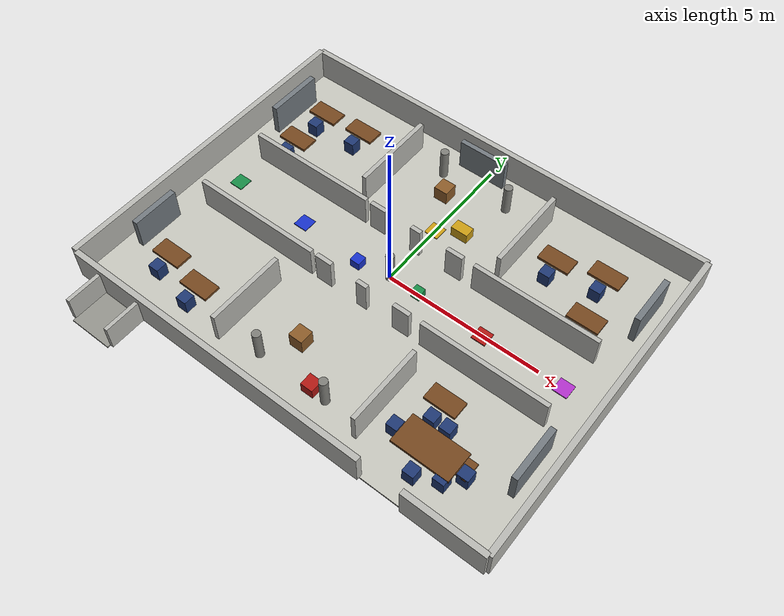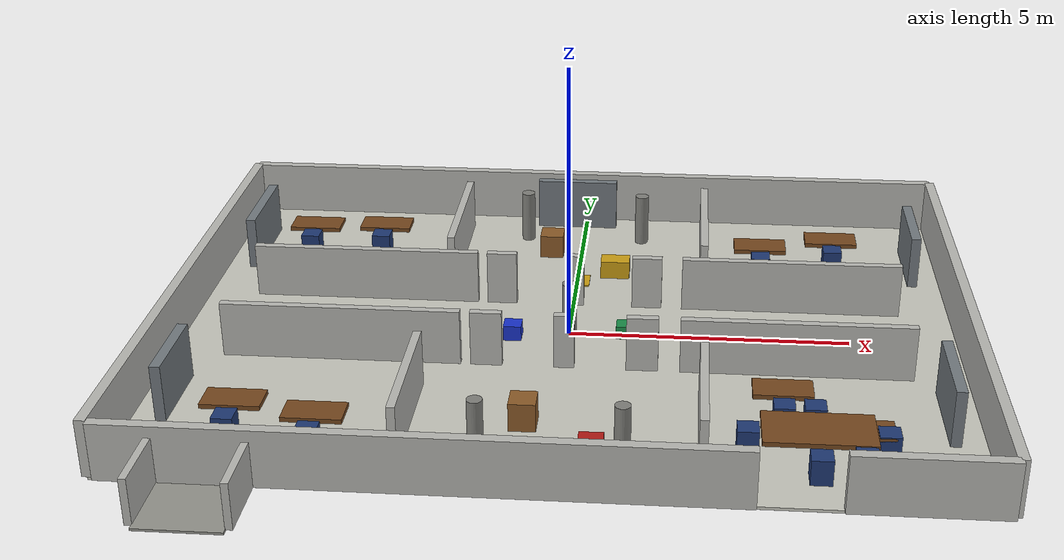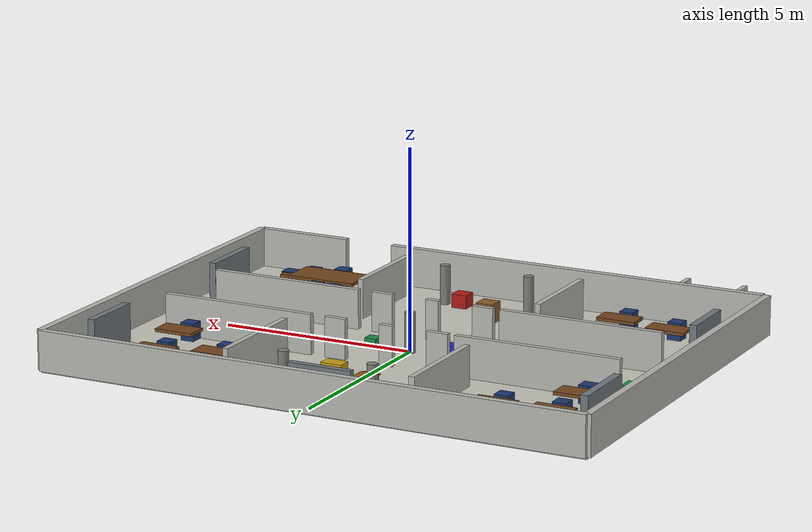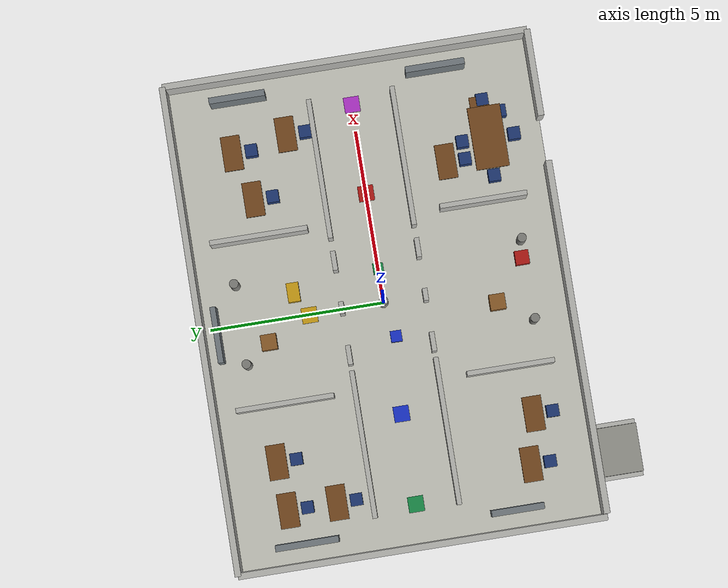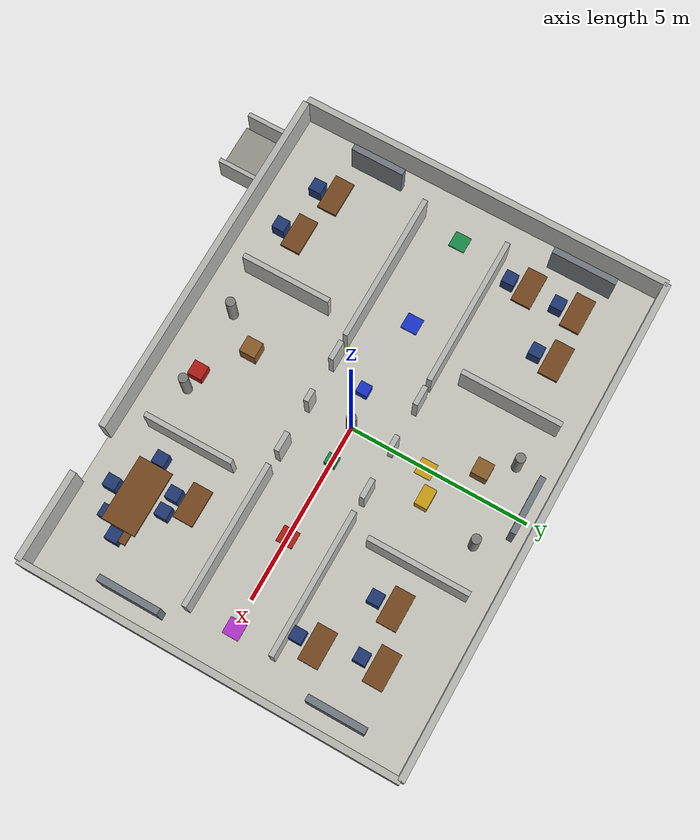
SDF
<?xml version="1.0"?>
<sdf version="1.6">
  <world name="emrmf_office_indoor">
    <plugin name="gazebo_ros_init" filename="libgazebo_ros_init.so"/>
    <plugin name="gazebo_ros_factory" filename="libgazebo_ros_factory.so"/>

    <scene>
      <ambient>0.55 0.55 0.55 1</ambient>
      <background>0.82 0.84 0.88 1</background>
      <shadows>false</shadows>
    </scene>
    <gravity>0 0 -9.8</gravity>

    <light name="sun" type="directional">
      <pose>0 0 8 0 0 0</pose>
      <diffuse>0.8 0.8 0.8 1</diffuse>
      <specular>0.1 0.1 0.1 1</specular>
      <direction>-0.4 0.2 -1</direction>
    </light>
    <light name="office_light_north" type="point"><pose>-3 3.2 3.0 0 0 0</pose><diffuse>0.9 0.9 0.82 1</diffuse><attenuation><range>10</range><constant>0.8</constant><linear>0.02</linear><quadratic>0.001</quadratic></attenuation></light>
    <light name="office_light_south" type="point"><pose>3 -3.2 3.0 0 0 0</pose><diffuse>0.9 0.9 0.82 1</diffuse><attenuation><range>10</range><constant>0.8</constant><linear>0.02</linear><quadratic>0.001</quadratic></attenuation></light>
    <light name="corridor_light" type="point"><pose>0 0 2.8 0 0 0</pose><diffuse>0.85 0.9 1.0 1</diffuse><attenuation><range>9</range><constant>0.8</constant><linear>0.02</linear><quadratic>0.001</quadratic></attenuation></light>

    <model name="ground_plane">
      <static>true</static>
      <pose>0 0 -0.025 0 0 0</pose>
      <link name="link">
        <collision name="collision"><geometry><box><size>14.0 10.5 0.05</size></box></geometry></collision>
        <visual name="visual"><geometry><box><size>14.0 10.5 0.05</size></box></geometry><material><ambient>0.78 0.78 0.74 1</ambient><diffuse>0.78 0.78 0.74 1</diffuse></material></visual>
      </link>
    </model>
    <model name="outer_wall_north">
      <static>true</static>
      <pose>0 5.25 0.5 0 0 0</pose>
      <link name="link">
        <collision name="collision"><geometry><box><size>14.0 0.18 1.0</size></box></geometry></collision>
        <visual name="visual"><geometry><box><size>14.0 0.18 1.0</size></box></geometry><material><ambient>0.72 0.72 0.70 1</ambient><diffuse>0.72 0.72 0.70 1</diffuse></material></visual>
      </link>
    </model>
    <model name="outer_wall_west">
      <static>true</static>
      <pose>-7.0 0 0.5 0 0 0</pose>
      <link name="link">
        <collision name="collision"><geometry><box><size>0.18 10.5 1.0</size></box></geometry></collision>
        <visual name="visual"><geometry><box><size>0.18 10.5 1.0</size></box></geometry><material><ambient>0.72 0.72 0.70 1</ambient><diffuse>0.72 0.72 0.70 1</diffuse></material></visual>
      </link>
    </model>
    <model name="outer_wall_east">
      <static>true</static>
      <pose>7.0 0 0.5 0 0 0</pose>
      <link name="link">
        <collision name="collision"><geometry><box><size>0.18 10.5 1.0</size></box></geometry></collision>
        <visual name="visual"><geometry><box><size>0.18 10.5 1.0</size></box></geometry><material><ambient>0.72 0.72 0.70 1</ambient><diffuse>0.72 0.72 0.70 1</diffuse></material></visual>
      </link>
    </model>
    <model name="outer_wall_south_left">
      <static>true</static>
      <pose>-1.85 -5.25 0.5 0 0 0</pose>
      <link name="link">
        <collision name="collision"><geometry><box><size>10.1 0.18 1.0</size></box></geometry></collision>
        <visual name="visual"><geometry><box><size>10.1 0.18 1.0</size></box></geometry><material><ambient>0.72 0.72 0.70 1</ambient><diffuse>0.72 0.72 0.70 1</diffuse></material></visual>
      </link>
    </model>
    <model name="outer_wall_south_right">
      <static>true</static>
      <pose>5.75 -5.25 0.5 0 0 0</pose>
      <link name="link">
        <collision name="collision"><geometry><box><size>2.5 0.18 1.0</size></box></geometry></collision>
        <visual name="visual"><geometry><box><size>2.5 0.18 1.0</size></box></geometry><material><ambient>0.72 0.72 0.70 1</ambient><diffuse>0.72 0.72 0.70 1</diffuse></material></visual>
      </link>
    </model>
    <model name="entrance_corridor_floor">
      <static>true</static>
      <pose>-5.2 -5.95 0.0 0 0 0</pose>
      <link name="link">
        <collision name="collision"><geometry><box><size>1.4 1.2 0.04</size></box></geometry></collision>
        <visual name="visual"><geometry><box><size>1.4 1.2 0.04</size></box></geometry><material><ambient>0.58 0.58 0.55 1</ambient><diffuse>0.58 0.58 0.55 1</diffuse></material></visual>
      </link>
    </model>
    <model name="entrance_left_short_wall">
      <static>true</static>
      <pose>-5.95 -5.85 0.4 0 0 0</pose>
      <link name="link">
        <collision name="collision"><geometry><box><size>0.12 1.2 0.8</size></box></geometry></collision>
        <visual name="visual"><geometry><box><size>0.12 1.2 0.8</size></box></geometry><material><ambient>0.72 0.72 0.70 1</ambient><diffuse>0.72 0.72 0.70 1</diffuse></material></visual>
      </link>
    </model>
    <model name="entrance_right_short_wall">
      <static>true</static>
      <pose>-4.45 -5.85 0.4 0 0 0</pose>
      <link name="link">
        <collision name="collision"><geometry><box><size>0.12 1.2 0.8</size></box></geometry></collision>
        <visual name="visual"><geometry><box><size>0.12 1.2 0.8</size></box></geometry><material><ambient>0.72 0.72 0.70 1</ambient><diffuse>0.72 0.72 0.70 1</diffuse></material></visual>
      </link>
    </model>
    <model name="room1_corridor_wall">
      <static>true</static>
      <pose>-3.9 1.2 0.5 0 0 0</pose>
      <link name="link">
        <collision name="collision"><geometry><box><size>4.2 0.14 1.0</size></box></geometry></collision>
        <visual name="visual"><geometry><box><size>4.2 0.14 1.0</size></box></geometry><material><ambient>0.72 0.72 0.70 1</ambient><diffuse>0.72 0.72 0.70 1</diffuse></material></visual>
      </link>
    </model>
    <model name="room2_corridor_wall">
      <static>true</static>
      <pose>4.0 1.2 0.5 0 0 0</pose>
      <link name="link">
        <collision name="collision"><geometry><box><size>4.0 0.14 1.0</size></box></geometry></collision>
        <visual name="visual"><geometry><box><size>4.0 0.14 1.0</size></box></geometry><material><ambient>0.72 0.72 0.70 1</ambient><diffuse>0.72 0.72 0.70 1</diffuse></material></visual>
      </link>
    </model>
    <model name="south_lab_corridor_wall">
      <static>true</static>
      <pose>-3.9 -1.2 0.5 0 0 0</pose>
      <link name="link">
        <collision name="collision"><geometry><box><size>4.2 0.14 1.0</size></box></geometry></collision>
        <visual name="visual"><geometry><box><size>4.2 0.14 1.0</size></box></geometry><material><ambient>0.72 0.72 0.70 1</ambient><diffuse>0.72 0.72 0.70 1</diffuse></material></visual>
      </link>
    </model>
    <model name="meeting_corridor_wall">
      <static>true</static>
      <pose>4.0 -1.2 0.5 0 0 0</pose>
      <link name="link">
        <collision name="collision"><geometry><box><size>4.0 0.14 1.0</size></box></geometry></collision>
        <visual name="visual"><geometry><box><size>4.0 0.14 1.0</size></box></geometry><material><ambient>0.72 0.72 0.70 1</ambient><diffuse>0.72 0.72 0.70 1</diffuse></material></visual>
      </link>
    </model>
    <model name="west_room_divider">
      <static>true</static>
      <pose>-2.4 3.2 0.5 0 0 0</pose>
      <link name="link">
        <collision name="collision"><geometry><box><size>0.14 2.8 1.0</size></box></geometry></collision>
        <visual name="visual"><geometry><box><size>0.14 2.8 1.0</size></box></geometry><material><ambient>0.72 0.72 0.70 1</ambient><diffuse>0.72 0.72 0.70 1</diffuse></material></visual>
      </link>
    </model>
    <model name="east_room_divider">
      <static>true</static>
      <pose>2.4 3.2 0.5 0 0 0</pose>
      <link name="link">
        <collision name="collision"><geometry><box><size>0.14 2.8 1.0</size></box></geometry></collision>
        <visual name="visual"><geometry><box><size>0.14 2.8 1.0</size></box></geometry><material><ambient>0.72 0.72 0.70 1</ambient><diffuse>0.72 0.72 0.70 1</diffuse></material></visual>
      </link>
    </model>
    <model name="south_lab_divider">
      <static>true</static>
      <pose>-2.4 -3.25 0.5 0 0 0</pose>
      <link name="link">
        <collision name="collision"><geometry><box><size>0.14 2.5 1.0</size></box></geometry></collision>
        <visual name="visual"><geometry><box><size>0.14 2.5 1.0</size></box></geometry><material><ambient>0.72 0.72 0.70 1</ambient><diffuse>0.72 0.72 0.70 1</diffuse></material></visual>
      </link>
    </model>
    <model name="meeting_office_divider">
      <static>true</static>
      <pose>2.4 -3.25 0.5 0 0 0</pose>
      <link name="link">
        <collision name="collision"><geometry><box><size>0.14 2.5 1.0</size></box></geometry></collision>
        <visual name="visual"><geometry><box><size>0.14 2.5 1.0</size></box></geometry><material><ambient>0.72 0.72 0.70 1</ambient><diffuse>0.72 0.72 0.70 1</diffuse></material></visual>
      </link>
    </model>
    <model name="room1_door_nib_left">
      <static>true</static>
      <pose>-1.35 1.2 0.5 0 0 0</pose>
      <link name="link">
        <collision name="collision"><geometry><box><size>0.55 0.14 1.0</size></box></geometry></collision>
        <visual name="visual"><geometry><box><size>0.55 0.14 1.0</size></box></geometry><material><ambient>0.72 0.72 0.70 1</ambient><diffuse>0.72 0.72 0.70 1</diffuse></material></visual>
      </link>
    </model>
    <model name="room2_door_nib_right">
      <static>true</static>
      <pose>1.35 1.2 0.5 0 0 0</pose>
      <link name="link">
        <collision name="collision"><geometry><box><size>0.55 0.14 1.0</size></box></geometry></collision>
        <visual name="visual"><geometry><box><size>0.55 0.14 1.0</size></box></geometry><material><ambient>0.72 0.72 0.70 1</ambient><diffuse>0.72 0.72 0.70 1</diffuse></material></visual>
      </link>
    </model>
    <model name="south_door_nib_left">
      <static>true</static>
      <pose>-1.35 -1.2 0.5 0 0 0</pose>
      <link name="link">
        <collision name="collision"><geometry><box><size>0.55 0.14 1.0</size></box></geometry></collision>
        <visual name="visual"><geometry><box><size>0.55 0.14 1.0</size></box></geometry><material><ambient>0.72 0.72 0.70 1</ambient><diffuse>0.72 0.72 0.70 1</diffuse></material></visual>
      </link>
    </model>
    <model name="meeting_door_nib_right">
      <static>true</static>
      <pose>1.35 -1.2 0.5 0 0 0</pose>
      <link name="link">
        <collision name="collision"><geometry><box><size>0.55 0.14 1.0</size></box></geometry></collision>
        <visual name="visual"><geometry><box><size>0.55 0.14 1.0</size></box></geometry><material><ambient>0.72 0.72 0.70 1</ambient><diffuse>0.72 0.72 0.70 1</diffuse></material></visual>
      </link>
    </model>
    <model name="office_desk_1">
      <static>true</static>
      <pose>-5.4 3.6 0.38 0 0 0</pose>
      <link name="link">
        <collision name="collision"><geometry><box><size>1.0 0.55 0.08</size></box></geometry></collision>
        <visual name="visual"><geometry><box><size>1.0 0.55 0.08</size></box></geometry><material><ambient>0.46 0.28 0.12 1</ambient><diffuse>0.46 0.28 0.12 1</diffuse></material></visual>
      </link>
    </model>
    <model name="chair_1">
      <static>true</static>
      <pose>-5.4 3.05 0.22 0 0 0</pose>
      <link name="link">
        <collision name="collision"><geometry><box><size>0.35 0.35 0.44</size></box></geometry></collision>
        <visual name="visual"><geometry><box><size>0.35 0.35 0.44</size></box></geometry><material><ambient>0.12 0.22 0.45 1</ambient><diffuse>0.12 0.22 0.45 1</diffuse></material></visual>
      </link>
    </model>
    <model name="office_desk_2">
      <static>true</static>
      <pose>-4.0 3.7 0.38 0 0 0</pose>
      <link name="link">
        <collision name="collision"><geometry><box><size>1.0 0.55 0.08</size></box></geometry></collision>
        <visual name="visual"><geometry><box><size>1.0 0.55 0.08</size></box></geometry><material><ambient>0.46 0.28 0.12 1</ambient><diffuse>0.46 0.28 0.12 1</diffuse></material></visual>
      </link>
    </model>
    <model name="chair_2">
      <static>true</static>
      <pose>-4.0 3.1500000000000004 0.22 0 0 0</pose>
      <link name="link">
        <collision name="collision"><geometry><box><size>0.35 0.35 0.44</size></box></geometry></collision>
        <visual name="visual"><geometry><box><size>0.35 0.35 0.44</size></box></geometry><material><ambient>0.12 0.22 0.45 1</ambient><diffuse>0.12 0.22 0.45 1</diffuse></material></visual>
      </link>
    </model>
    <model name="office_desk_3">
      <static>true</static>
      <pose>-5.4 2.2 0.38 0 0 0</pose>
      <link name="link">
        <collision name="collision"><geometry><box><size>1.0 0.55 0.08</size></box></geometry></collision>
        <visual name="visual"><geometry><box><size>1.0 0.55 0.08</size></box></geometry><material><ambient>0.46 0.28 0.12 1</ambient><diffuse>0.46 0.28 0.12 1</diffuse></material></visual>
      </link>
    </model>
    <model name="chair_3">
      <static>true</static>
      <pose>-5.4 1.6500000000000001 0.22 0 0 0</pose>
      <link name="link">
        <collision name="collision"><geometry><box><size>0.35 0.35 0.44</size></box></geometry></collision>
        <visual name="visual"><geometry><box><size>0.35 0.35 0.44</size></box></geometry><material><ambient>0.12 0.22 0.45 1</ambient><diffuse>0.12 0.22 0.45 1</diffuse></material></visual>
      </link>
    </model>
    <model name="office_desk_4">
      <static>true</static>
      <pose>4.9 3.6 0.38 0 0 0</pose>
      <link name="link">
        <collision name="collision"><geometry><box><size>1.0 0.55 0.08</size></box></geometry></collision>
        <visual name="visual"><geometry><box><size>1.0 0.55 0.08</size></box></geometry><material><ambient>0.46 0.28 0.12 1</ambient><diffuse>0.46 0.28 0.12 1</diffuse></material></visual>
      </link>
    </model>
    <model name="chair_4">
      <static>true</static>
      <pose>4.9 3.05 0.22 0 0 0</pose>
      <link name="link">
        <collision name="collision"><geometry><box><size>0.35 0.35 0.44</size></box></geometry></collision>
        <visual name="visual"><geometry><box><size>0.35 0.35 0.44</size></box></geometry><material><ambient>0.12 0.22 0.45 1</ambient><diffuse>0.12 0.22 0.45 1</diffuse></material></visual>
      </link>
    </model>
    <model name="office_desk_5">
      <static>true</static>
      <pose>3.5 3.2 0.38 0 0 0</pose>
      <link name="link">
        <collision name="collision"><geometry><box><size>1.0 0.55 0.08</size></box></geometry></collision>
        <visual name="visual"><geometry><box><size>1.0 0.55 0.08</size></box></geometry><material><ambient>0.46 0.28 0.12 1</ambient><diffuse>0.46 0.28 0.12 1</diffuse></material></visual>
      </link>
    </model>
    <model name="chair_5">
      <static>true</static>
      <pose>3.5 2.6500000000000004 0.22 0 0 0</pose>
      <link name="link">
        <collision name="collision"><geometry><box><size>0.35 0.35 0.44</size></box></geometry></collision>
        <visual name="visual"><geometry><box><size>0.35 0.35 0.44</size></box></geometry><material><ambient>0.12 0.22 0.45 1</ambient><diffuse>0.12 0.22 0.45 1</diffuse></material></visual>
      </link>
    </model>
    <model name="office_desk_6">
      <static>true</static>
      <pose>5.2 2.0 0.38 0 0 0</pose>
      <link name="link">
        <collision name="collision"><geometry><box><size>1.0 0.55 0.08</size></box></geometry></collision>
        <visual name="visual"><geometry><box><size>1.0 0.55 0.08</size></box></geometry><material><ambient>0.46 0.28 0.12 1</ambient><diffuse>0.46 0.28 0.12 1</diffuse></material></visual>
      </link>
    </model>
    <model name="chair_6">
      <static>true</static>
      <pose>5.2 1.45 0.22 0 0 0</pose>
      <link name="link">
        <collision name="collision"><geometry><box><size>0.35 0.35 0.44</size></box></geometry></collision>
        <visual name="visual"><geometry><box><size>0.35 0.35 0.44</size></box></geometry><material><ambient>0.12 0.22 0.45 1</ambient><diffuse>0.12 0.22 0.45 1</diffuse></material></visual>
      </link>
    </model>
    <model name="office_desk_7">
      <static>true</static>
      <pose>-5.2 -3.4 0.38 0 0 0</pose>
      <link name="link">
        <collision name="collision"><geometry><box><size>1.0 0.55 0.08</size></box></geometry></collision>
        <visual name="visual"><geometry><box><size>1.0 0.55 0.08</size></box></geometry><material><ambient>0.46 0.28 0.12 1</ambient><diffuse>0.46 0.28 0.12 1</diffuse></material></visual>
      </link>
    </model>
    <model name="chair_7">
      <static>true</static>
      <pose>-5.2 -3.95 0.22 0 0 0</pose>
      <link name="link">
        <collision name="collision"><geometry><box><size>0.35 0.35 0.44</size></box></geometry></collision>
        <visual name="visual"><geometry><box><size>0.35 0.35 0.44</size></box></geometry><material><ambient>0.12 0.22 0.45 1</ambient><diffuse>0.12 0.22 0.45 1</diffuse></material></visual>
      </link>
    </model>
    <model name="office_desk_8">
      <static>true</static>
      <pose>-3.8 -3.7 0.38 0 0 0</pose>
      <link name="link">
        <collision name="collision"><geometry><box><size>1.0 0.55 0.08</size></box></geometry></collision>
        <visual name="visual"><geometry><box><size>1.0 0.55 0.08</size></box></geometry><material><ambient>0.46 0.28 0.12 1</ambient><diffuse>0.46 0.28 0.12 1</diffuse></material></visual>
      </link>
    </model>
    <model name="chair_8">
      <static>true</static>
      <pose>-3.8 -4.25 0.22 0 0 0</pose>
      <link name="link">
        <collision name="collision"><geometry><box><size>0.35 0.35 0.44</size></box></geometry></collision>
        <visual name="visual"><geometry><box><size>0.35 0.35 0.44</size></box></geometry><material><ambient>0.12 0.22 0.45 1</ambient><diffuse>0.12 0.22 0.45 1</diffuse></material></visual>
      </link>
    </model>
    <model name="office_desk_9">
      <static>true</static>
      <pose>4.9 -3.6 0.38 0 0 0</pose>
      <link name="link">
        <collision name="collision"><geometry><box><size>1.0 0.55 0.08</size></box></geometry></collision>
        <visual name="visual"><geometry><box><size>1.0 0.55 0.08</size></box></geometry><material><ambient>0.46 0.28 0.12 1</ambient><diffuse>0.46 0.28 0.12 1</diffuse></material></visual>
      </link>
    </model>
    <model name="chair_9">
      <static>true</static>
      <pose>4.9 -4.15 0.22 0 0 0</pose>
      <link name="link">
        <collision name="collision"><geometry><box><size>0.35 0.35 0.44</size></box></geometry></collision>
        <visual name="visual"><geometry><box><size>0.35 0.35 0.44</size></box></geometry><material><ambient>0.12 0.22 0.45 1</ambient><diffuse>0.12 0.22 0.45 1</diffuse></material></visual>
      </link>
    </model>
    <model name="office_desk_10">
      <static>true</static>
      <pose>3.7 -2.4 0.38 0 0 0</pose>
      <link name="link">
        <collision name="collision"><geometry><box><size>1.0 0.55 0.08</size></box></geometry></collision>
        <visual name="visual"><geometry><box><size>1.0 0.55 0.08</size></box></geometry><material><ambient>0.46 0.28 0.12 1</ambient><diffuse>0.46 0.28 0.12 1</diffuse></material></visual>
      </link>
    </model>
    <model name="chair_10">
      <static>true</static>
      <pose>3.7 -2.95 0.22 0 0 0</pose>
      <link name="link">
        <collision name="collision"><geometry><box><size>0.35 0.35 0.44</size></box></geometry></collision>
        <visual name="visual"><geometry><box><size>0.35 0.35 0.44</size></box></geometry><material><ambient>0.12 0.22 0.45 1</ambient><diffuse>0.12 0.22 0.45 1</diffuse></material></visual>
      </link>
    </model>
    <model name="meeting_table">
      <static>true</static>
      <pose>4.2 -3.7 0.42 0 0 0</pose>
      <link name="link">
        <collision name="collision"><geometry><box><size>1.8 0.95 0.08</size></box></geometry></collision>
        <visual name="visual"><geometry><box><size>1.8 0.95 0.08</size></box></geometry><material><ambient>0.46 0.28 0.12 1</ambient><diffuse>0.46 0.28 0.12 1</diffuse></material></visual>
      </link>
    </model>
    <model name="meeting_chair_1">
      <static>true</static>
      <pose>3.1 -3.7 0.22 0 0 0</pose>
      <link name="link">
        <collision name="collision"><geometry><box><size>0.35 0.35 0.44</size></box></geometry></collision>
        <visual name="visual"><geometry><box><size>0.35 0.35 0.44</size></box></geometry><material><ambient>0.12 0.22 0.45 1</ambient><diffuse>0.12 0.22 0.45 1</diffuse></material></visual>
      </link>
    </model>
    <model name="meeting_chair_2">
      <static>true</static>
      <pose>5.3 -3.7 0.22 0 0 0</pose>
      <link name="link">
        <collision name="collision"><geometry><box><size>0.35 0.35 0.44</size></box></geometry></collision>
        <visual name="visual"><geometry><box><size>0.35 0.35 0.44</size></box></geometry><material><ambient>0.12 0.22 0.45 1</ambient><diffuse>0.12 0.22 0.45 1</diffuse></material></visual>
      </link>
    </model>
    <model name="meeting_chair_3">
      <static>true</static>
      <pose>4.2 -2.95 0.22 0 0 0</pose>
      <link name="link">
        <collision name="collision"><geometry><box><size>0.35 0.35 0.44</size></box></geometry></collision>
        <visual name="visual"><geometry><box><size>0.35 0.35 0.44</size></box></geometry><material><ambient>0.12 0.22 0.45 1</ambient><diffuse>0.12 0.22 0.45 1</diffuse></material></visual>
      </link>
    </model>
    <model name="meeting_chair_4">
      <static>true</static>
      <pose>4.2 -4.45 0.22 0 0 0</pose>
      <link name="link">
        <collision name="collision"><geometry><box><size>0.35 0.35 0.44</size></box></geometry></collision>
        <visual name="visual"><geometry><box><size>0.35 0.35 0.44</size></box></geometry><material><ambient>0.12 0.22 0.45 1</ambient><diffuse>0.12 0.22 0.45 1</diffuse></material></visual>
      </link>
    </model>
    <model name="shelf_cabinet_1">
      <static>true</static>
      <pose>-6.4 3.2 0.5 0 0 0</pose>
      <link name="link">
        <collision name="collision"><geometry><box><size>0.18 1.8 1.0</size></box></geometry></collision>
        <visual name="visual"><geometry><box><size>0.18 1.8 1.0</size></box></geometry><material><ambient>0.45 0.48 0.50 1</ambient><diffuse>0.45 0.48 0.50 1</diffuse></material></visual>
      </link>
    </model>
    <model name="shelf_cabinet_2">
      <static>true</static>
      <pose>-6.4 -2.8 0.5 0 0 0</pose>
      <link name="link">
        <collision name="collision"><geometry><box><size>0.18 1.5 1.0</size></box></geometry></collision>
        <visual name="visual"><geometry><box><size>0.18 1.5 1.0</size></box></geometry><material><ambient>0.45 0.48 0.50 1</ambient><diffuse>0.45 0.48 0.50 1</diffuse></material></visual>
      </link>
    </model>
    <model name="shelf_cabinet_3">
      <static>true</static>
      <pose>6.4 3.2 0.5 0 0 0</pose>
      <link name="link">
        <collision name="collision"><geometry><box><size>0.18 1.6 1.0</size></box></geometry></collision>
        <visual name="visual"><geometry><box><size>0.18 1.6 1.0</size></box></geometry><material><ambient>0.45 0.48 0.50 1</ambient><diffuse>0.45 0.48 0.50 1</diffuse></material></visual>
      </link>
    </model>
    <model name="shelf_cabinet_4">
      <static>true</static>
      <pose>6.4 -2.5 0.5 0 0 0</pose>
      <link name="link">
        <collision name="collision"><geometry><box><size>0.18 1.7 1.0</size></box></geometry></collision>
        <visual name="visual"><geometry><box><size>0.18 1.7 1.0</size></box></geometry><material><ambient>0.45 0.48 0.50 1</ambient><diffuse>0.45 0.48 0.50 1</diffuse></material></visual>
      </link>
    </model>
    <model name="shelf_cabinet_5">
      <static>true</static>
      <pose>-0.2 4.8 0.5 0 0 0</pose>
      <link name="link">
        <collision name="collision"><geometry><box><size>1.6 0.16 1.0</size></box></geometry></collision>
        <visual name="visual"><geometry><box><size>1.6 0.16 1.0</size></box></geometry><material><ambient>0.45 0.48 0.50 1</ambient><diffuse>0.45 0.48 0.50 1</diffuse></material></visual>
      </link>
    </model>
    <model name="static_box_1">
      <static>true</static>
      <pose>-0.6 3.4 0.23 0 0 0</pose>
      <link name="link">
        <collision name="collision"><geometry><box><size>0.45 0.45 0.45</size></box></geometry></collision>
        <visual name="visual"><geometry><box><size>0.45 0.45 0.45</size></box></geometry><material><ambient>0.55 0.36 0.16 1</ambient><diffuse>0.55 0.36 0.16 1</diffuse></material></visual>
      </link>
    </model>
    <model name="static_box_2">
      <static>true</static>
      <pose>0.7 2.5 0.17 0 0 0</pose>
      <link name="link">
        <collision name="collision"><geometry><box><size>0.55 0.35 0.35</size></box></geometry></collision>
        <visual name="visual"><geometry><box><size>0.55 0.35 0.35</size></box></geometry><material><ambient>0.8 0.62 0.08 1</ambient><diffuse>0.8 0.62 0.08 1</diffuse></material></visual>
      </link>
    </model>
    <model name="static_box_3">
      <static>true</static>
      <pose>-0.5 -3.2 0.25 0 0 0</pose>
      <link name="link">
        <collision name="collision"><geometry><box><size>0.45 0.45 0.5</size></box></geometry></collision>
        <visual name="visual"><geometry><box><size>0.45 0.45 0.5</size></box></geometry><material><ambient>0.55 0.36 0.16 1</ambient><diffuse>0.55 0.36 0.16 1</diffuse></material></visual>
      </link>
    </model>
    <model name="static_box_4">
      <static>true</static>
      <pose>0.65 -4.1 0.17 0 0 0</pose>
      <link name="link">
        <collision name="collision"><geometry><box><size>0.40 0.40 0.35</size></box></geometry></collision>
        <visual name="visual"><geometry><box><size>0.40 0.40 0.35</size></box></geometry><material><ambient>0.7 0.1 0.08 1</ambient><diffuse>0.7 0.1 0.08 1</diffuse></material></visual>
      </link>
    </model>
    <model name="static_box_5">
      <static>true</static>
      <pose>1.0 0.0 0.12 0 0 0</pose>
      <link name="link">
        <collision name="collision"><geometry><box><size>0.30 0.30 0.25</size></box></geometry></collision>
        <visual name="visual"><geometry><box><size>0.30 0.30 0.25</size></box></geometry><material><ambient>0.1 0.55 0.28 1</ambient><diffuse>0.1 0.55 0.28 1</diffuse></material></visual>
      </link>
    </model>
    <model name="static_box_6">
      <static>true</static>
      <pose>-1.0 -0.2 0.14 0 0 0</pose>
      <link name="link">
        <collision name="collision"><geometry><box><size>0.32 0.32 0.28</size></box></geometry></collision>
        <visual name="visual"><geometry><box><size>0.32 0.32 0.28</size></box></geometry><material><ambient>0.1 0.2 0.8 1</ambient><diffuse>0.1 0.2 0.8 1</diffuse></material></visual>
      </link>
    </model>
    <model name="round_column_1">
      <static>true</static>
      <pose>-1.15 4.1 0.5 0 0 0</pose>
      <link name="link">
        <collision name="collision"><geometry><cylinder><radius>0.13</radius><length>1.0</length></cylinder></geometry></collision>
        <visual name="visual"><geometry><cylinder><radius>0.13</radius><length>1.0</length></cylinder></geometry><material><ambient>0.50 0.50 0.48 1</ambient><diffuse>0.50 0.50 0.48 1</diffuse></material></visual>
      </link>
    </model>
    <model name="round_column_2">
      <static>true</static>
      <pose>1.15 4.1 0.5 0 0 0</pose>
      <link name="link">
        <collision name="collision"><geometry><cylinder><radius>0.13</radius><length>1.0</length></cylinder></geometry></collision>
        <visual name="visual"><geometry><cylinder><radius>0.13</radius><length>1.0</length></cylinder></geometry><material><ambient>0.50 0.50 0.48 1</ambient><diffuse>0.50 0.50 0.48 1</diffuse></material></visual>
      </link>
    </model>
    <model name="round_column_3">
      <static>true</static>
      <pose>-1.15 -4.15 0.5 0 0 0</pose>
      <link name="link">
        <collision name="collision"><geometry><cylinder><radius>0.13</radius><length>1.0</length></cylinder></geometry></collision>
        <visual name="visual"><geometry><cylinder><radius>0.13</radius><length>1.0</length></cylinder></geometry><material><ambient>0.50 0.50 0.48 1</ambient><diffuse>0.50 0.50 0.48 1</diffuse></material></visual>
      </link>
    </model>
    <model name="round_column_4">
      <static>true</static>
      <pose>1.15 -4.15 0.5 0 0 0</pose>
      <link name="link">
        <collision name="collision"><geometry><cylinder><radius>0.13</radius><length>1.0</length></cylinder></geometry></collision>
        <visual name="visual"><geometry><cylinder><radius>0.13</radius><length>1.0</length></cylinder></geometry><material><ambient>0.50 0.50 0.48 1</ambient><diffuse>0.50 0.50 0.48 1</diffuse></material></visual>
      </link>
    </model>
    <model name="round_column_5">
      <static>true</static>
      <pose>0.0 0.0 0.5 0 0 0</pose>
      <link name="link">
        <collision name="collision"><geometry><cylinder><radius>0.13</radius><length>1.0</length></cylinder></geometry></collision>
        <visual name="visual"><geometry><cylinder><radius>0.13</radius><length>1.0</length></cylinder></geometry><material><ambient>0.50 0.50 0.48 1</ambient><diffuse>0.50 0.50 0.48 1</diffuse></material></visual>
      </link>
    </model>
    <model name="limo_1_spawn_marker">
      <static>true</static>
      <pose>-5.8 0.0 0.015 0 0 0</pose>
      <link name="link">
        <collision name="collision"><geometry><box><size>0.45 0.45 0.03</size></box></geometry></collision>
        <visual name="visual"><geometry><box><size>0.45 0.45 0.03</size></box></geometry><material><ambient>0.1 0.55 0.28 1</ambient><diffuse>0.1 0.55 0.28 1</diffuse></material></visual>
      </link>
    </model>
    <model name="limo_2_spawn_marker">
      <static>true</static>
      <pose>-3.2 0.0 0.015 0 0 0</pose>
      <link name="link">
        <collision name="collision"><geometry><box><size>0.45 0.45 0.03</size></box></geometry></collision>
        <visual name="visual"><geometry><box><size>0.45 0.45 0.03</size></box></geometry><material><ambient>0.1 0.2 0.8 1</ambient><diffuse>0.1 0.2 0.8 1</diffuse></material></visual>
      </link>
    </model>
    <model name="limo_3_spawn_marker">
      <static>true</static>
      <pose>0.0 2.15 0.015 0 0 0</pose>
      <link name="link">
        <collision name="collision"><geometry><box><size>0.45 0.45 0.03</size></box></geometry></collision>
        <visual name="visual"><geometry><box><size>0.45 0.45 0.03</size></box></geometry><material><ambient>0.8 0.62 0.08 1</ambient><diffuse>0.8 0.62 0.08 1</diffuse></material></visual>
      </link>
    </model>
    <model name="limo_4_spawn_marker">
      <static>true</static>
      <pose>3.2 0.0 0.015 0 0 0</pose>
      <link name="link">
        <collision name="collision"><geometry><box><size>0.45 0.45 0.03</size></box></geometry></collision>
        <visual name="visual"><geometry><box><size>0.45 0.45 0.03</size></box></geometry><material><ambient>0.7 0.1 0.08 1</ambient><diffuse>0.7 0.1 0.08 1</diffuse></material></visual>
      </link>
    </model>
    <model name="limo_5_spawn_marker">
      <static>true</static>
      <pose>5.8 0.0 0.015 0 0 0</pose>
      <link name="link">
        <collision name="collision"><geometry><box><size>0.45 0.45 0.03</size></box></geometry></collision>
        <visual name="visual"><geometry><box><size>0.45 0.45 0.03</size></box></geometry><material><ambient>0.7 0.2 0.8 1</ambient><diffuse>0.7 0.2 0.8 1</diffuse></material></visual>
      </link>
    </model>
    <model name="corridor_feature_wall_north">
      <static>true</static>
      <pose>0 1.2 0.5 0 0 0</pose>
      <link name="link">
        <collision name="collision"><geometry><box><size>0.35 0.14 1.0</size></box></geometry></collision>
        <visual name="visual"><geometry><box><size>0.35 0.14 1.0</size></box></geometry><material><ambient>0.72 0.72 0.70 1</ambient><diffuse>0.72 0.72 0.70 1</diffuse></material></visual>
      </link>
    </model>
    <model name="corridor_feature_wall_south">
      <static>true</static>
      <pose>0 -1.2 0.5 0 0 0</pose>
      <link name="link">
        <collision name="collision"><geometry><box><size>0.35 0.14 1.0</size></box></geometry></collision>
        <visual name="visual"><geometry><box><size>0.35 0.14 1.0</size></box></geometry><material><ambient>0.72 0.72 0.70 1</ambient><diffuse>0.72 0.72 0.70 1</diffuse></material></visual>
      </link>
    </model>
  </world>
</sdf>
